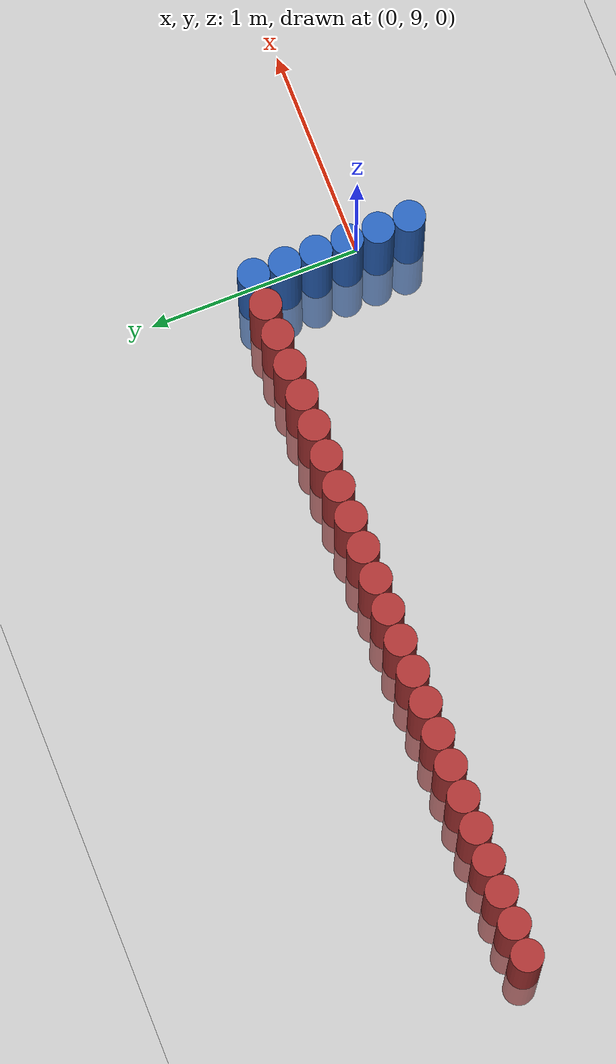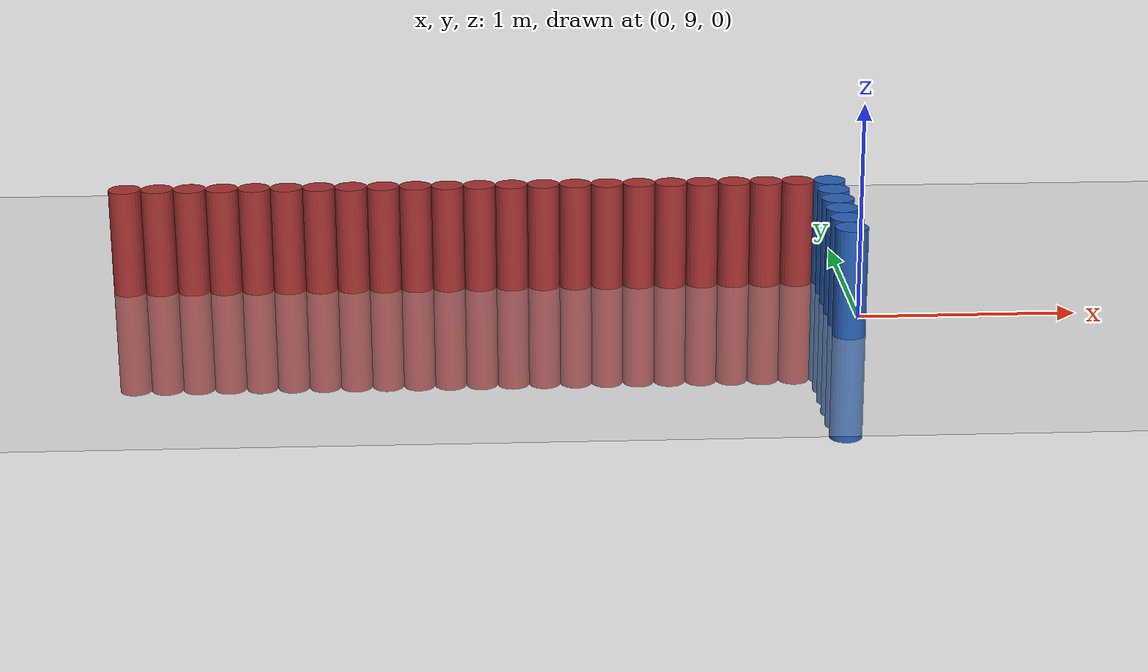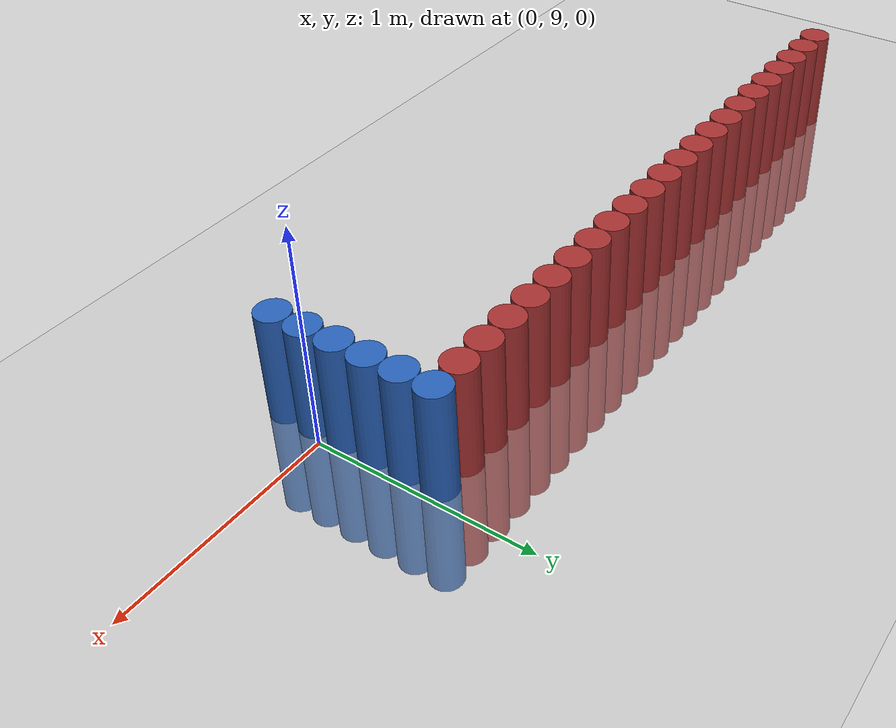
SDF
<sdf version="1.6">
 <world name="default">
  <model name="ground_plane">
   <static>1</static>
   <link name="link">
    <collision name="collision">
     <geometry><plane><normal>0 0 1</normal><size>100 100</size></plane></geometry>
     <surface><friction><ode><mu>100</mu><mu2>50</mu2></ode></friction></surface>
    </collision>
    <visual name="visual">
     <cast_shadows>0</cast_shadows>
     <geometry><plane><normal>0 0 1</normal><size>100 100</size></plane></geometry>
     <material>
      <script><uri>file://media/materials/scripts/gazebo.material</uri><name>Gazebo/Grey</name></script>
     </material>
    </visual>
   </link>
  </model>
  <model name="unit_cylinder_346">
   <static>1</static>
   <pose>-3.375000 9.525000 0.000000 0.000000 0.000000 0.000000</pose>
   <link name="link">
    <inertial>
     <mass>1</mass>
     <inertia><ixx>0.145833</ixx><ixy>0</ixy><ixz>0</ixz><iyy>0.145833</iyy><iyz>0</iyz><izz>0.125</izz></inertia>
    </inertial>
    <collision name="collision">
     <geometry><cylinder><radius>0.075000</radius><length>1</length></cylinder></geometry>
    </collision>
    <visual name="visual">
     <geometry><cylinder><radius>0.075000</radius><length>1</length></cylinder></geometry>
     <material>
      <ambient>0.648000 0.192000 0.192000 1</ambient>
      <diffuse>0.648000 0.192000 0.192000 1</diffuse>
     </material>
     <material>
      <script><name>Gazebo/Grey</name><uri>file://media/materials/scripts/gazebo.material</uri></script>
     </material>
    </visual>
   </link>
  </model>
  <model name="unit_cylinder_363">
   <static>1</static>
   <pose>-3.225000 9.525000 0.000000 0.000000 0.000000 0.000000</pose>
   <link name="link">
    <inertial>
     <mass>1</mass>
     <inertia><ixx>0.145833</ixx><ixy>0</ixy><ixz>0</ixz><iyy>0.145833</iyy><iyz>0</iyz><izz>0.125</izz></inertia>
    </inertial>
    <collision name="collision">
     <geometry><cylinder><radius>0.075000</radius><length>1</length></cylinder></geometry>
    </collision>
    <visual name="visual">
     <geometry><cylinder><radius>0.075000</radius><length>1</length></cylinder></geometry>
     <material>
      <ambient>0.648000 0.192000 0.192000 1</ambient>
      <diffuse>0.648000 0.192000 0.192000 1</diffuse>
     </material>
     <material>
      <script><name>Gazebo/Grey</name><uri>file://media/materials/scripts/gazebo.material</uri></script>
     </material>
    </visual>
   </link>
  </model>
  <model name="unit_cylinder_365">
   <static>1</static>
   <pose>-3.075000 9.525000 0.000000 0.000000 0.000000 0.000000</pose>
   <link name="link">
    <inertial>
     <mass>1</mass>
     <inertia><ixx>0.145833</ixx><ixy>0</ixy><ixz>0</ixz><iyy>0.145833</iyy><iyz>0</iyz><izz>0.125</izz></inertia>
    </inertial>
    <collision name="collision">
     <geometry><cylinder><radius>0.075000</radius><length>1</length></cylinder></geometry>
    </collision>
    <visual name="visual">
     <geometry><cylinder><radius>0.075000</radius><length>1</length></cylinder></geometry>
     <material>
      <ambient>0.648000 0.192000 0.192000 1</ambient>
      <diffuse>0.648000 0.192000 0.192000 1</diffuse>
     </material>
     <material>
      <script><name>Gazebo/Grey</name><uri>file://media/materials/scripts/gazebo.material</uri></script>
     </material>
    </visual>
   </link>
  </model>
  <model name="unit_cylinder_367">
   <static>1</static>
   <pose>-2.925000 9.525000 0.000000 0.000000 0.000000 0.000000</pose>
   <link name="link">
    <inertial>
     <mass>1</mass>
     <inertia><ixx>0.145833</ixx><ixy>0</ixy><ixz>0</ixz><iyy>0.145833</iyy><iyz>0</iyz><izz>0.125</izz></inertia>
    </inertial>
    <collision name="collision">
     <geometry><cylinder><radius>0.075000</radius><length>1</length></cylinder></geometry>
    </collision>
    <visual name="visual">
     <geometry><cylinder><radius>0.075000</radius><length>1</length></cylinder></geometry>
     <material>
      <ambient>0.648000 0.192000 0.192000 1</ambient>
      <diffuse>0.648000 0.192000 0.192000 1</diffuse>
     </material>
     <material>
      <script><name>Gazebo/Grey</name><uri>file://media/materials/scripts/gazebo.material</uri></script>
     </material>
    </visual>
   </link>
  </model>
  <model name="unit_cylinder_369">
   <static>1</static>
   <pose>-2.775000 9.525000 0.000000 0.000000 0.000000 0.000000</pose>
   <link name="link">
    <inertial>
     <mass>1</mass>
     <inertia><ixx>0.145833</ixx><ixy>0</ixy><ixz>0</ixz><iyy>0.145833</iyy><iyz>0</iyz><izz>0.125</izz></inertia>
    </inertial>
    <collision name="collision">
     <geometry><cylinder><radius>0.075000</radius><length>1</length></cylinder></geometry>
    </collision>
    <visual name="visual">
     <geometry><cylinder><radius>0.075000</radius><length>1</length></cylinder></geometry>
     <material>
      <ambient>0.648000 0.192000 0.192000 1</ambient>
      <diffuse>0.648000 0.192000 0.192000 1</diffuse>
     </material>
     <material>
      <script><name>Gazebo/Grey</name><uri>file://media/materials/scripts/gazebo.material</uri></script>
     </material>
    </visual>
   </link>
  </model>
  <model name="unit_cylinder_371">
   <static>1</static>
   <pose>-2.625000 9.525000 0.000000 0.000000 0.000000 0.000000</pose>
   <link name="link">
    <inertial>
     <mass>1</mass>
     <inertia><ixx>0.145833</ixx><ixy>0</ixy><ixz>0</ixz><iyy>0.145833</iyy><iyz>0</iyz><izz>0.125</izz></inertia>
    </inertial>
    <collision name="collision">
     <geometry><cylinder><radius>0.075000</radius><length>1</length></cylinder></geometry>
    </collision>
    <visual name="visual">
     <geometry><cylinder><radius>0.075000</radius><length>1</length></cylinder></geometry>
     <material>
      <ambient>0.648000 0.192000 0.192000 1</ambient>
      <diffuse>0.648000 0.192000 0.192000 1</diffuse>
     </material>
     <material>
      <script><name>Gazebo/Grey</name><uri>file://media/materials/scripts/gazebo.material</uri></script>
     </material>
    </visual>
   </link>
  </model>
  <model name="unit_cylinder_373">
   <static>1</static>
   <pose>-2.475000 9.525000 0.000000 0.000000 0.000000 0.000000</pose>
   <link name="link">
    <inertial>
     <mass>1</mass>
     <inertia><ixx>0.145833</ixx><ixy>0</ixy><ixz>0</ixz><iyy>0.145833</iyy><iyz>0</iyz><izz>0.125</izz></inertia>
    </inertial>
    <collision name="collision">
     <geometry><cylinder><radius>0.075000</radius><length>1</length></cylinder></geometry>
    </collision>
    <visual name="visual">
     <geometry><cylinder><radius>0.075000</radius><length>1</length></cylinder></geometry>
     <material>
      <ambient>0.648000 0.192000 0.192000 1</ambient>
      <diffuse>0.648000 0.192000 0.192000 1</diffuse>
     </material>
     <material>
      <script><name>Gazebo/Grey</name><uri>file://media/materials/scripts/gazebo.material</uri></script>
     </material>
    </visual>
   </link>
  </model>
  <model name="unit_cylinder_375">
   <static>1</static>
   <pose>-2.325000 9.525000 0.000000 0.000000 0.000000 0.000000</pose>
   <link name="link">
    <inertial>
     <mass>1</mass>
     <inertia><ixx>0.145833</ixx><ixy>0</ixy><ixz>0</ixz><iyy>0.145833</iyy><iyz>0</iyz><izz>0.125</izz></inertia>
    </inertial>
    <collision name="collision">
     <geometry><cylinder><radius>0.075000</radius><length>1</length></cylinder></geometry>
    </collision>
    <visual name="visual">
     <geometry><cylinder><radius>0.075000</radius><length>1</length></cylinder></geometry>
     <material>
      <ambient>0.648000 0.192000 0.192000 1</ambient>
      <diffuse>0.648000 0.192000 0.192000 1</diffuse>
     </material>
     <material>
      <script><name>Gazebo/Grey</name><uri>file://media/materials/scripts/gazebo.material</uri></script>
     </material>
    </visual>
   </link>
  </model>
  <model name="unit_cylinder_377">
   <static>1</static>
   <pose>-2.175000 9.525000 0.000000 0.000000 0.000000 0.000000</pose>
   <link name="link">
    <inertial>
     <mass>1</mass>
     <inertia><ixx>0.145833</ixx><ixy>0</ixy><ixz>0</ixz><iyy>0.145833</iyy><iyz>0</iyz><izz>0.125</izz></inertia>
    </inertial>
    <collision name="collision">
     <geometry><cylinder><radius>0.075000</radius><length>1</length></cylinder></geometry>
    </collision>
    <visual name="visual">
     <geometry><cylinder><radius>0.075000</radius><length>1</length></cylinder></geometry>
     <material>
      <ambient>0.648000 0.192000 0.192000 1</ambient>
      <diffuse>0.648000 0.192000 0.192000 1</diffuse>
     </material>
     <material>
      <script><name>Gazebo/Grey</name><uri>file://media/materials/scripts/gazebo.material</uri></script>
     </material>
    </visual>
   </link>
  </model>
  <model name="unit_cylinder_379">
   <static>1</static>
   <pose>-2.025000 9.525000 0.000000 0.000000 0.000000 0.000000</pose>
   <link name="link">
    <inertial>
     <mass>1</mass>
     <inertia><ixx>0.145833</ixx><ixy>0</ixy><ixz>0</ixz><iyy>0.145833</iyy><iyz>0</iyz><izz>0.125</izz></inertia>
    </inertial>
    <collision name="collision">
     <geometry><cylinder><radius>0.075000</radius><length>1</length></cylinder></geometry>
    </collision>
    <visual name="visual">
     <geometry><cylinder><radius>0.075000</radius><length>1</length></cylinder></geometry>
     <material>
      <ambient>0.648000 0.192000 0.192000 1</ambient>
      <diffuse>0.648000 0.192000 0.192000 1</diffuse>
     </material>
     <material>
      <script><name>Gazebo/Grey</name><uri>file://media/materials/scripts/gazebo.material</uri></script>
     </material>
    </visual>
   </link>
  </model>
  <model name="unit_cylinder_381">
   <static>1</static>
   <pose>-1.875000 9.525000 0.000000 0.000000 0.000000 0.000000</pose>
   <link name="link">
    <inertial>
     <mass>1</mass>
     <inertia><ixx>0.145833</ixx><ixy>0</ixy><ixz>0</ixz><iyy>0.145833</iyy><iyz>0</iyz><izz>0.125</izz></inertia>
    </inertial>
    <collision name="collision">
     <geometry><cylinder><radius>0.075000</radius><length>1</length></cylinder></geometry>
    </collision>
    <visual name="visual">
     <geometry><cylinder><radius>0.075000</radius><length>1</length></cylinder></geometry>
     <material>
      <ambient>0.648000 0.192000 0.192000 1</ambient>
      <diffuse>0.648000 0.192000 0.192000 1</diffuse>
     </material>
     <material>
      <script><name>Gazebo/Grey</name><uri>file://media/materials/scripts/gazebo.material</uri></script>
     </material>
    </visual>
   </link>
  </model>
  <model name="unit_cylinder_383">
   <static>1</static>
   <pose>-1.725000 9.525000 0.000000 0.000000 0.000000 0.000000</pose>
   <link name="link">
    <inertial>
     <mass>1</mass>
     <inertia><ixx>0.145833</ixx><ixy>0</ixy><ixz>0</ixz><iyy>0.145833</iyy><iyz>0</iyz><izz>0.125</izz></inertia>
    </inertial>
    <collision name="collision">
     <geometry><cylinder><radius>0.075000</radius><length>1</length></cylinder></geometry>
    </collision>
    <visual name="visual">
     <geometry><cylinder><radius>0.075000</radius><length>1</length></cylinder></geometry>
     <material>
      <ambient>0.648000 0.192000 0.192000 1</ambient>
      <diffuse>0.648000 0.192000 0.192000 1</diffuse>
     </material>
     <material>
      <script><name>Gazebo/Grey</name><uri>file://media/materials/scripts/gazebo.material</uri></script>
     </material>
    </visual>
   </link>
  </model>
  <model name="unit_cylinder_385">
   <static>1</static>
   <pose>-1.575000 9.525000 0.000000 0.000000 0.000000 0.000000</pose>
   <link name="link">
    <inertial>
     <mass>1</mass>
     <inertia><ixx>0.145833</ixx><ixy>0</ixy><ixz>0</ixz><iyy>0.145833</iyy><iyz>0</iyz><izz>0.125</izz></inertia>
    </inertial>
    <collision name="collision">
     <geometry><cylinder><radius>0.075000</radius><length>1</length></cylinder></geometry>
    </collision>
    <visual name="visual">
     <geometry><cylinder><radius>0.075000</radius><length>1</length></cylinder></geometry>
     <material>
      <ambient>0.648000 0.192000 0.192000 1</ambient>
      <diffuse>0.648000 0.192000 0.192000 1</diffuse>
     </material>
     <material>
      <script><name>Gazebo/Grey</name><uri>file://media/materials/scripts/gazebo.material</uri></script>
     </material>
    </visual>
   </link>
  </model>
  <model name="unit_cylinder_387">
   <static>1</static>
   <pose>-1.425000 9.525000 0.000000 0.000000 0.000000 0.000000</pose>
   <link name="link">
    <inertial>
     <mass>1</mass>
     <inertia><ixx>0.145833</ixx><ixy>0</ixy><ixz>0</ixz><iyy>0.145833</iyy><iyz>0</iyz><izz>0.125</izz></inertia>
    </inertial>
    <collision name="collision">
     <geometry><cylinder><radius>0.075000</radius><length>1</length></cylinder></geometry>
    </collision>
    <visual name="visual">
     <geometry><cylinder><radius>0.075000</radius><length>1</length></cylinder></geometry>
     <material>
      <ambient>0.648000 0.192000 0.192000 1</ambient>
      <diffuse>0.648000 0.192000 0.192000 1</diffuse>
     </material>
     <material>
      <script><name>Gazebo/Grey</name><uri>file://media/materials/scripts/gazebo.material</uri></script>
     </material>
    </visual>
   </link>
  </model>
  <model name="unit_cylinder_389">
   <static>1</static>
   <pose>-1.275000 9.525000 0.000000 0.000000 0.000000 0.000000</pose>
   <link name="link">
    <inertial>
     <mass>1</mass>
     <inertia><ixx>0.145833</ixx><ixy>0</ixy><ixz>0</ixz><iyy>0.145833</iyy><iyz>0</iyz><izz>0.125</izz></inertia>
    </inertial>
    <collision name="collision">
     <geometry><cylinder><radius>0.075000</radius><length>1</length></cylinder></geometry>
    </collision>
    <visual name="visual">
     <geometry><cylinder><radius>0.075000</radius><length>1</length></cylinder></geometry>
     <material>
      <ambient>0.648000 0.192000 0.192000 1</ambient>
      <diffuse>0.648000 0.192000 0.192000 1</diffuse>
     </material>
     <material>
      <script><name>Gazebo/Grey</name><uri>file://media/materials/scripts/gazebo.material</uri></script>
     </material>
    </visual>
   </link>
  </model>
  <model name="unit_cylinder_391">
   <static>1</static>
   <pose>-1.125000 9.525000 0.000000 0.000000 0.000000 0.000000</pose>
   <link name="link">
    <inertial>
     <mass>1</mass>
     <inertia><ixx>0.145833</ixx><ixy>0</ixy><ixz>0</ixz><iyy>0.145833</iyy><iyz>0</iyz><izz>0.125</izz></inertia>
    </inertial>
    <collision name="collision">
     <geometry><cylinder><radius>0.075000</radius><length>1</length></cylinder></geometry>
    </collision>
    <visual name="visual">
     <geometry><cylinder><radius>0.075000</radius><length>1</length></cylinder></geometry>
     <material>
      <ambient>0.648000 0.192000 0.192000 1</ambient>
      <diffuse>0.648000 0.192000 0.192000 1</diffuse>
     </material>
     <material>
      <script><name>Gazebo/Grey</name><uri>file://media/materials/scripts/gazebo.material</uri></script>
     </material>
    </visual>
   </link>
  </model>
  <model name="unit_cylinder_393">
   <static>1</static>
   <pose>-0.975000 9.525000 0.000000 0.000000 0.000000 0.000000</pose>
   <link name="link">
    <inertial>
     <mass>1</mass>
     <inertia><ixx>0.145833</ixx><ixy>0</ixy><ixz>0</ixz><iyy>0.145833</iyy><iyz>0</iyz><izz>0.125</izz></inertia>
    </inertial>
    <collision name="collision">
     <geometry><cylinder><radius>0.075000</radius><length>1</length></cylinder></geometry>
    </collision>
    <visual name="visual">
     <geometry><cylinder><radius>0.075000</radius><length>1</length></cylinder></geometry>
     <material>
      <ambient>0.648000 0.192000 0.192000 1</ambient>
      <diffuse>0.648000 0.192000 0.192000 1</diffuse>
     </material>
     <material>
      <script><name>Gazebo/Grey</name><uri>file://media/materials/scripts/gazebo.material</uri></script>
     </material>
    </visual>
   </link>
  </model>
  <model name="unit_cylinder_395">
   <static>1</static>
   <pose>-0.825000 9.525000 0.000000 0.000000 0.000000 0.000000</pose>
   <link name="link">
    <inertial>
     <mass>1</mass>
     <inertia><ixx>0.145833</ixx><ixy>0</ixy><ixz>0</ixz><iyy>0.145833</iyy><iyz>0</iyz><izz>0.125</izz></inertia>
    </inertial>
    <collision name="collision">
     <geometry><cylinder><radius>0.075000</radius><length>1</length></cylinder></geometry>
    </collision>
    <visual name="visual">
     <geometry><cylinder><radius>0.075000</radius><length>1</length></cylinder></geometry>
     <material>
      <ambient>0.648000 0.192000 0.192000 1</ambient>
      <diffuse>0.648000 0.192000 0.192000 1</diffuse>
     </material>
     <material>
      <script><name>Gazebo/Grey</name><uri>file://media/materials/scripts/gazebo.material</uri></script>
     </material>
    </visual>
   </link>
  </model>
  <model name="unit_cylinder_397">
   <static>1</static>
   <pose>-0.675000 9.525000 0.000000 0.000000 0.000000 0.000000</pose>
   <link name="link">
    <inertial>
     <mass>1</mass>
     <inertia><ixx>0.145833</ixx><ixy>0</ixy><ixz>0</ixz><iyy>0.145833</iyy><iyz>0</iyz><izz>0.125</izz></inertia>
    </inertial>
    <collision name="collision">
     <geometry><cylinder><radius>0.075000</radius><length>1</length></cylinder></geometry>
    </collision>
    <visual name="visual">
     <geometry><cylinder><radius>0.075000</radius><length>1</length></cylinder></geometry>
     <material>
      <ambient>0.648000 0.192000 0.192000 1</ambient>
      <diffuse>0.648000 0.192000 0.192000 1</diffuse>
     </material>
     <material>
      <script><name>Gazebo/Grey</name><uri>file://media/materials/scripts/gazebo.material</uri></script>
     </material>
    </visual>
   </link>
  </model>
  <model name="unit_cylinder_399">
   <static>1</static>
   <pose>-0.525000 9.525000 0.000000 0.000000 0.000000 0.000000</pose>
   <link name="link">
    <inertial>
     <mass>1</mass>
     <inertia><ixx>0.145833</ixx><ixy>0</ixy><ixz>0</ixz><iyy>0.145833</iyy><iyz>0</iyz><izz>0.125</izz></inertia>
    </inertial>
    <collision name="collision">
     <geometry><cylinder><radius>0.075000</radius><length>1</length></cylinder></geometry>
    </collision>
    <visual name="visual">
     <geometry><cylinder><radius>0.075000</radius><length>1</length></cylinder></geometry>
     <material>
      <ambient>0.648000 0.192000 0.192000 1</ambient>
      <diffuse>0.648000 0.192000 0.192000 1</diffuse>
     </material>
     <material>
      <script><name>Gazebo/Grey</name><uri>file://media/materials/scripts/gazebo.material</uri></script>
     </material>
    </visual>
   </link>
  </model>
  <model name="unit_cylinder_401">
   <static>1</static>
   <pose>-0.375000 9.525000 0.000000 0.000000 0.000000 0.000000</pose>
   <link name="link">
    <inertial>
     <mass>1</mass>
     <inertia><ixx>0.145833</ixx><ixy>0</ixy><ixz>0</ixz><iyy>0.145833</iyy><iyz>0</iyz><izz>0.125</izz></inertia>
    </inertial>
    <collision name="collision">
     <geometry><cylinder><radius>0.075000</radius><length>1</length></cylinder></geometry>
    </collision>
    <visual name="visual">
     <geometry><cylinder><radius>0.075000</radius><length>1</length></cylinder></geometry>
     <material>
      <ambient>0.648000 0.192000 0.192000 1</ambient>
      <diffuse>0.648000 0.192000 0.192000 1</diffuse>
     </material>
     <material>
      <script><name>Gazebo/Grey</name><uri>file://media/materials/scripts/gazebo.material</uri></script>
     </material>
    </visual>
   </link>
  </model>
  <model name="unit_cylinder_403">
   <static>1</static>
   <pose>-0.225000 9.525000 0.000000 0.000000 0.000000 0.000000</pose>
   <link name="link">
    <inertial>
     <mass>1</mass>
     <inertia><ixx>0.145833</ixx><ixy>0</ixy><ixz>0</ixz><iyy>0.145833</iyy><iyz>0</iyz><izz>0.125</izz></inertia>
    </inertial>
    <collision name="collision">
     <geometry><cylinder><radius>0.075000</radius><length>1</length></cylinder></geometry>
    </collision>
    <visual name="visual">
     <geometry><cylinder><radius>0.075000</radius><length>1</length></cylinder></geometry>
     <material>
      <ambient>0.648000 0.192000 0.192000 1</ambient>
      <diffuse>0.648000 0.192000 0.192000 1</diffuse>
     </material>
     <material>
      <script><name>Gazebo/Grey</name><uri>file://media/materials/scripts/gazebo.material</uri></script>
     </material>
    </visual>
   </link>
  </model>
  <model name="unit_cylinder_428">
   <static>1</static>
   <pose>-0.075000 8.775000 0.000000 0.000000 0.000000 0.000000</pose>
   <link name="link">
    <inertial>
     <mass>1</mass>
     <inertia><ixx>0.145833</ixx><ixy>0</ixy><ixz>0</ixz><iyy>0.145833</iyy><iyz>0</iyz><izz>0.125</izz></inertia>
    </inertial>
    <collision name="collision">
     <geometry><cylinder><radius>0.075000</radius><length>1</length></cylinder></geometry>
    </collision>
    <visual name="visual">
     <geometry><cylinder><radius>0.075000</radius><length>1</length></cylinder></geometry>
     <material>
      <ambient>0.152000 0.379000 0.720000 1</ambient>
      <diffuse>0.152000 0.379000 0.720000 1</diffuse>
     </material>
     <material>
      <script><name>Gazebo/Grey</name><uri>file://media/materials/scripts/gazebo.material</uri></script>
     </material>
    </visual>
   </link>
  </model>
  <model name="unit_cylinder_429">
   <static>1</static>
   <pose>-0.075000 8.925000 0.000000 0.000000 0.000000 0.000000</pose>
   <link name="link">
    <inertial>
     <mass>1</mass>
     <inertia><ixx>0.145833</ixx><ixy>0</ixy><ixz>0</ixz><iyy>0.145833</iyy><iyz>0</iyz><izz>0.125</izz></inertia>
    </inertial>
    <collision name="collision">
     <geometry><cylinder><radius>0.075000</radius><length>1</length></cylinder></geometry>
    </collision>
    <visual name="visual">
     <geometry><cylinder><radius>0.075000</radius><length>1</length></cylinder></geometry>
     <material>
      <ambient>0.152000 0.379000 0.720000 1</ambient>
      <diffuse>0.152000 0.379000 0.720000 1</diffuse>
     </material>
     <material>
      <script><name>Gazebo/Grey</name><uri>file://media/materials/scripts/gazebo.material</uri></script>
     </material>
    </visual>
   </link>
  </model>
  <model name="unit_cylinder_430">
   <static>1</static>
   <pose>-0.075000 9.075000 0.000000 0.000000 0.000000 0.000000</pose>
   <link name="link">
    <inertial>
     <mass>1</mass>
     <inertia><ixx>0.145833</ixx><ixy>0</ixy><ixz>0</ixz><iyy>0.145833</iyy><iyz>0</iyz><izz>0.125</izz></inertia>
    </inertial>
    <collision name="collision">
     <geometry><cylinder><radius>0.075000</radius><length>1</length></cylinder></geometry>
    </collision>
    <visual name="visual">
     <geometry><cylinder><radius>0.075000</radius><length>1</length></cylinder></geometry>
     <material>
      <ambient>0.152000 0.379000 0.720000 1</ambient>
      <diffuse>0.152000 0.379000 0.720000 1</diffuse>
     </material>
     <material>
      <script><name>Gazebo/Grey</name><uri>file://media/materials/scripts/gazebo.material</uri></script>
     </material>
    </visual>
   </link>
  </model>
  <model name="unit_cylinder_431">
   <static>1</static>
   <pose>-0.075000 9.225000 0.000000 0.000000 0.000000 0.000000</pose>
   <link name="link">
    <inertial>
     <mass>1</mass>
     <inertia><ixx>0.145833</ixx><ixy>0</ixy><ixz>0</ixz><iyy>0.145833</iyy><iyz>0</iyz><izz>0.125</izz></inertia>
    </inertial>
    <collision name="collision">
     <geometry><cylinder><radius>0.075000</radius><length>1</length></cylinder></geometry>
    </collision>
    <visual name="visual">
     <geometry><cylinder><radius>0.075000</radius><length>1</length></cylinder></geometry>
     <material>
      <ambient>0.152000 0.379000 0.720000 1</ambient>
      <diffuse>0.152000 0.379000 0.720000 1</diffuse>
     </material>
     <material>
      <script><name>Gazebo/Grey</name><uri>file://media/materials/scripts/gazebo.material</uri></script>
     </material>
    </visual>
   </link>
  </model>
  <model name="unit_cylinder_432">
   <static>1</static>
   <pose>-0.075000 9.375000 0.000000 0.000000 0.000000 0.000000</pose>
   <link name="link">
    <inertial>
     <mass>1</mass>
     <inertia><ixx>0.145833</ixx><ixy>0</ixy><ixz>0</ixz><iyy>0.145833</iyy><iyz>0</iyz><izz>0.125</izz></inertia>
    </inertial>
    <collision name="collision">
     <geometry><cylinder><radius>0.075000</radius><length>1</length></cylinder></geometry>
    </collision>
    <visual name="visual">
     <geometry><cylinder><radius>0.075000</radius><length>1</length></cylinder></geometry>
     <material>
      <ambient>0.152000 0.379000 0.720000 1</ambient>
      <diffuse>0.152000 0.379000 0.720000 1</diffuse>
     </material>
     <material>
      <script><name>Gazebo/Grey</name><uri>file://media/materials/scripts/gazebo.material</uri></script>
     </material>
    </visual>
   </link>
  </model>
  <model name="unit_cylinder_433">
   <static>1</static>
   <pose>-0.075000 9.525000 0.000000 0.000000 0.000000 0.000000</pose>
   <link name="link">
    <inertial>
     <mass>1</mass>
     <inertia><ixx>0.145833</ixx><ixy>0</ixy><ixz>0</ixz><iyy>0.145833</iyy><iyz>0</iyz><izz>0.125</izz></inertia>
    </inertial>
    <collision name="collision">
     <geometry><cylinder><radius>0.075000</radius><length>1</length></cylinder></geometry>
    </collision>
    <visual name="visual">
     <geometry><cylinder><radius>0.075000</radius><length>1</length></cylinder></geometry>
     <material>
      <ambient>0.152000 0.379000 0.720000 1</ambient>
      <diffuse>0.152000 0.379000 0.720000 1</diffuse>
     </material>
     <material>
      <script><name>Gazebo/Grey</name><uri>file://media/materials/scripts/gazebo.material</uri></script>
     </material>
    </visual>
   </link>
  </model>
 </world>
</sdf>
